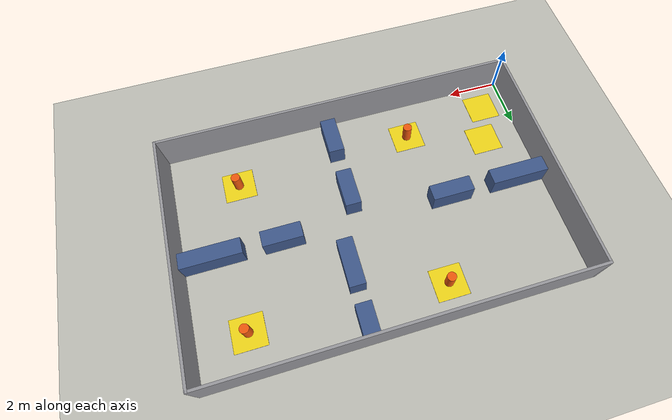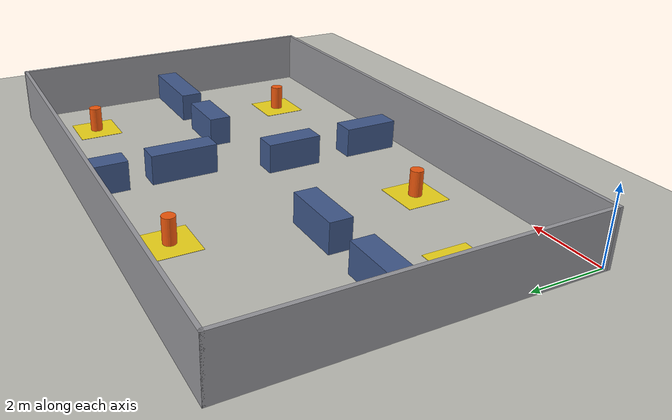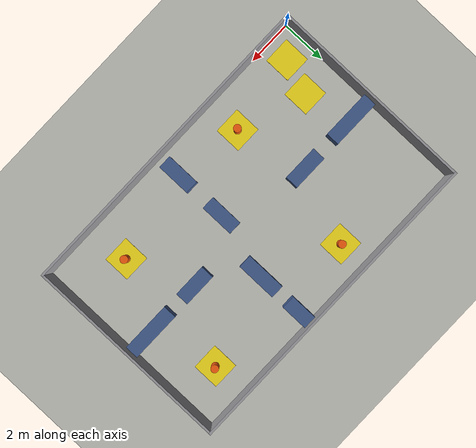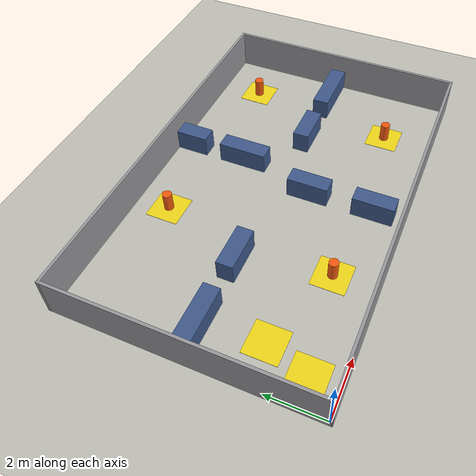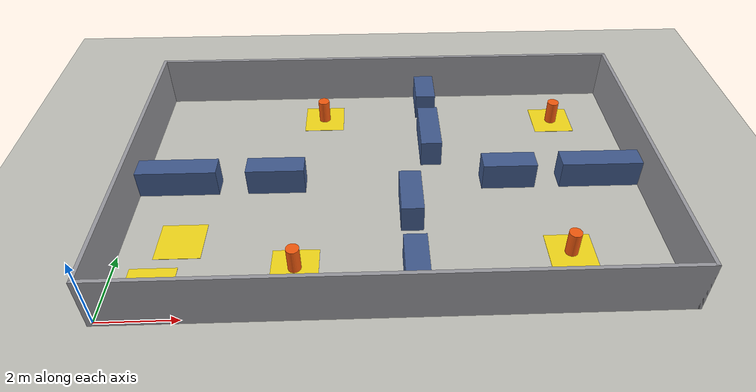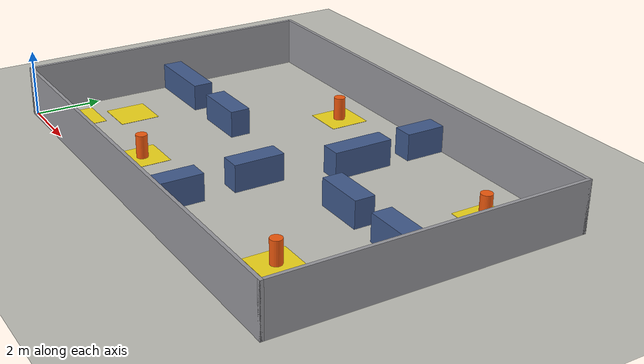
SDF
<?xml version="1.0"?>
<sdf version="1.9">
  <world name="arena_galpao">

    <physics name="1ms" type="ignored">
      <max_step_size>0.001</max_step_size>
      <real_time_factor>1.0</real_time_factor>
    </physics>

    <plugin filename="gz-sim-physics-system"
            name="gz::sim::systems::Physics"/>
    <plugin filename="gz-sim-user-commands-system"
            name="gz::sim::systems::UserCommands"/>
    <plugin filename="gz-sim-scene-broadcaster-system"
            name="gz::sim::systems::SceneBroadcaster"/>
    <plugin filename="gz-sim-imu-system"
            name="gz::sim::systems::Imu"></plugin>
    <plugin filename="gz-sim-sensors-system"
            name="gz::sim::systems::Sensors">
      <render_engine>ogre2</render_engine>
    </plugin>

    <light type="directional" name="sun">
      <cast_shadows>true</cast_shadows>
      <pose>0 0 10 0 0 0</pose>
      <diffuse>0.8 0.8 0.8 1</diffuse>
      <specular>0.2 0.2 0.2 1</specular>
      <direction>-0.5 0.1 -0.9</direction>
    </light>

    <model name="ground_plane">
      <static>true</static>
      <link name="link">
        <collision name="collision">
          <geometry><plane><normal>0 0 1</normal><size>100 100</size></plane></geometry>
        </collision>
        <visual name="visual">
          <geometry><plane><normal>0 0 1</normal><size>100 100</size></plane></geometry>
          <material>
            <ambient>0.75 0.75 0.72 1</ambient>
            <diffuse>0.75 0.75 0.72 1</diffuse>
          </material>
        </visual>
      </link>
    </model>

    <model name="muro_sul">
      <static>true</static><pose>7.0000 -0.0500 0.7500 0 0 0</pose>
      <link name="link">
        <collision name="col"><geometry><box><size>14.2000 0.1000 1.5000</size></box></geometry></collision>
        <visual name="vis"><geometry><box><size>14.2000 0.1000 1.5000</size></box></geometry>
          <material><ambient>0.6 0.6 0.62 1</ambient><diffuse>0.6 0.6 0.62 1</diffuse></material>
        </visual>
      </link>
    </model>
    <model name="muro_norte">
      <static>true</static><pose>7.0000 9.0500 0.7500 0 0 0</pose>
      <link name="link">
        <collision name="col"><geometry><box><size>14.2000 0.1000 1.5000</size></box></geometry></collision>
        <visual name="vis"><geometry><box><size>14.2000 0.1000 1.5000</size></box></geometry>
          <material><ambient>0.6 0.6 0.62 1</ambient><diffuse>0.6 0.6 0.62 1</diffuse></material>
        </visual>
      </link>
    </model>
    <model name="muro_oeste">
      <static>true</static><pose>-0.0500 4.5000 0.7500 0 0 0</pose>
      <link name="link">
        <collision name="col"><geometry><box><size>0.1000 9.2000 1.5000</size></box></geometry></collision>
        <visual name="vis"><geometry><box><size>0.1000 9.2000 1.5000</size></box></geometry>
          <material><ambient>0.6 0.6 0.62 1</ambient><diffuse>0.6 0.6 0.62 1</diffuse></material>
        </visual>
      </link>
    </model>
    <model name="muro_leste">
      <static>true</static><pose>14.0500 4.5000 0.7500 0 0 0</pose>
      <link name="link">
        <collision name="col"><geometry><box><size>0.1000 9.2000 1.5000</size></box></geometry></collision>
        <visual name="vis"><geometry><box><size>0.1000 9.2000 1.5000</size></box></geometry>
          <material><ambient>0.6 0.6 0.62 1</ambient><diffuse>0.6 0.6 0.62 1</diffuse></material>
        </visual>
      </link>
    </model>
    <model name="A_fresta90_1">
      <static>true</static><pose>7.5000 1.0500 0.4000 0 0 0</pose>
      <link name="link">
        <collision name="col"><geometry><box><size>0.6000 1.5000 0.8000</size></box></geometry></collision>
        <visual name="vis"><geometry><box><size>0.6000 1.5000 0.8000</size></box></geometry>
          <material><ambient>0.25 0.35 0.55 1</ambient><diffuse>0.25 0.35 0.55 1</diffuse></material>
        </visual>
      </link>
    </model>
    <model name="A_fresta90_2">
      <static>true</static><pose>7.5000 3.4500 0.4000 0 0 0</pose>
      <link name="link">
        <collision name="col"><geometry><box><size>0.6000 1.5000 0.8000</size></box></geometry></collision>
        <visual name="vis"><geometry><box><size>0.6000 1.5000 0.8000</size></box></geometry>
          <material><ambient>0.25 0.35 0.55 1</ambient><diffuse>0.25 0.35 0.55 1</diffuse></material>
        </visual>
      </link>
    </model>
    <model name="B_fresta70_1">
      <static>true</static><pose>10.3000 4.6000 0.4000 0 0 0</pose>
      <link name="link">
        <collision name="col"><geometry><box><size>1.5000 0.6000 0.8000</size></box></geometry></collision>
        <visual name="vis"><geometry><box><size>1.5000 0.6000 0.8000</size></box></geometry>
          <material><ambient>0.25 0.35 0.55 1</ambient><diffuse>0.25 0.35 0.55 1</diffuse></material>
        </visual>
      </link>
    </model>
    <model name="B_fresta70_2">
      <static>true</static><pose>12.8750 4.6000 0.4000 0 0 0</pose>
      <link name="link">
        <collision name="col"><geometry><box><size>2.2500 0.6000 0.8000</size></box></geometry></collision>
        <visual name="vis"><geometry><box><size>2.2500 0.6000 0.8000</size></box></geometry>
          <material><ambient>0.25 0.35 0.55 1</ambient><diffuse>0.25 0.35 0.55 1</diffuse></material>
        </visual>
      </link>
    </model>
    <model name="C_fresta60_1">
      <static>true</static><pose>8.2000 6.3000 0.4000 0 0 0</pose>
      <link name="link">
        <collision name="col"><geometry><box><size>0.6000 1.8000 0.8000</size></box></geometry></collision>
        <visual name="vis"><geometry><box><size>0.6000 1.8000 0.8000</size></box></geometry>
          <material><ambient>0.25 0.35 0.55 1</ambient><diffuse>0.25 0.35 0.55 1</diffuse></material>
        </visual>
      </link>
    </model>
    <model name="C_fresta60_2">
      <static>true</static><pose>8.2000 8.4000 0.4000 0 0 0</pose>
      <link name="link">
        <collision name="col"><geometry><box><size>0.6000 1.2000 0.8000</size></box></geometry></collision>
        <visual name="vis"><geometry><box><size>0.6000 1.2000 0.8000</size></box></geometry>
          <material><ambient>0.25 0.35 0.55 1</ambient><diffuse>0.25 0.35 0.55 1</diffuse></material>
        </visual>
      </link>
    </model>
    <model name="D_fresta80_1">
      <static>true</static><pose>1.1000 4.6000 0.4000 0 0 0</pose>
      <link name="link">
        <collision name="col"><geometry><box><size>2.2000 0.6000 0.8000</size></box></geometry></collision>
        <visual name="vis"><geometry><box><size>2.2000 0.6000 0.8000</size></box></geometry>
          <material><ambient>0.25 0.35 0.55 1</ambient><diffuse>0.25 0.35 0.55 1</diffuse></material>
        </visual>
      </link>
    </model>
    <model name="D_fresta80_2">
      <static>true</static><pose>3.8000 4.6000 0.4000 0 0 0</pose>
      <link name="link">
        <collision name="col"><geometry><box><size>1.6000 0.6000 0.8000</size></box></geometry></collision>
        <visual name="vis"><geometry><box><size>1.6000 0.6000 0.8000</size></box></geometry>
          <material><ambient>0.25 0.35 0.55 1</ambient><diffuse>0.25 0.35 0.55 1</diffuse></material>
        </visual>
      </link>
    </model>
    <model name="plat_largada">
      <static>true</static><pose>1.0000 1.0000 0.005 0 0 0</pose>
      <link name="link">
        <visual name="vis"><geometry><box><size>1.2 1.2 0.01</size></box></geometry>
          <material><ambient>0.95 0.85 0.1 1</ambient><diffuse>0.95 0.85 0.1 1</diffuse></material>
        </visual>
      </link>
    </model>
    <model name="plat_cone_1">
      <static>true</static><pose>4.5000 1.5000 0.005 0 0 0</pose>
      <link name="link">
        <visual name="vis"><geometry><box><size>1.2 1.2 0.01</size></box></geometry>
          <material><ambient>0.95 0.85 0.1 1</ambient><diffuse>0.95 0.85 0.1 1</diffuse></material>
        </visual>
      </link>
    </model>
    <model name="cone_1">
      <static>true</static><pose>4.5000 1.5000 0.3500 0 0 0</pose>
      <link name="link">
        <collision name="col"><geometry><cylinder><radius>0.17</radius><length>0.7</length></cylinder></geometry></collision>
        <visual name="vis"><geometry><cylinder><radius>0.17</radius><length>0.7</length></cylinder></geometry>
          <material><ambient>0.95 0.35 0.05 1</ambient><diffuse>0.95 0.35 0.05 1</diffuse></material>
        </visual>
      </link>
    </model>
    <model name="plat_cone_2">
      <static>true</static><pose>11.5000 1.8000 0.005 0 0 0</pose>
      <link name="link">
        <visual name="vis"><geometry><box><size>1.2 1.2 0.01</size></box></geometry>
          <material><ambient>0.95 0.85 0.1 1</ambient><diffuse>0.95 0.85 0.1 1</diffuse></material>
        </visual>
      </link>
    </model>
    <model name="cone_2">
      <static>true</static><pose>11.5000 1.8000 0.3500 0 0 0</pose>
      <link name="link">
        <collision name="col"><geometry><cylinder><radius>0.17</radius><length>0.7</length></cylinder></geometry></collision>
        <visual name="vis"><geometry><cylinder><radius>0.17</radius><length>0.7</length></cylinder></geometry>
          <material><ambient>0.95 0.35 0.05 1</ambient><diffuse>0.95 0.35 0.05 1</diffuse></material>
        </visual>
      </link>
    </model>
    <model name="plat_cone_3">
      <static>true</static><pose>12.2000 7.5000 0.005 0 0 0</pose>
      <link name="link">
        <visual name="vis"><geometry><box><size>1.2 1.2 0.01</size></box></geometry>
          <material><ambient>0.95 0.85 0.1 1</ambient><diffuse>0.95 0.85 0.1 1</diffuse></material>
        </visual>
      </link>
    </model>
    <model name="cone_3">
      <static>true</static><pose>12.2000 7.5000 0.3500 0 0 0</pose>
      <link name="link">
        <collision name="col"><geometry><cylinder><radius>0.17</radius><length>0.7</length></cylinder></geometry></collision>
        <visual name="vis"><geometry><cylinder><radius>0.17</radius><length>0.7</length></cylinder></geometry>
          <material><ambient>0.95 0.35 0.05 1</ambient><diffuse>0.95 0.35 0.05 1</diffuse></material>
        </visual>
      </link>
    </model>
    <model name="plat_cone_4">
      <static>true</static><pose>5.0000 7.8000 0.005 0 0 0</pose>
      <link name="link">
        <visual name="vis"><geometry><box><size>1.2 1.2 0.01</size></box></geometry>
          <material><ambient>0.95 0.85 0.1 1</ambient><diffuse>0.95 0.85 0.1 1</diffuse></material>
        </visual>
      </link>
    </model>
    <model name="cone_4">
      <static>true</static><pose>5.0000 7.8000 0.3500 0 0 0</pose>
      <link name="link">
        <collision name="col"><geometry><cylinder><radius>0.17</radius><length>0.7</length></cylinder></geometry></collision>
        <visual name="vis"><geometry><cylinder><radius>0.17</radius><length>0.7</length></cylinder></geometry>
          <material><ambient>0.95 0.35 0.05 1</ambient><diffuse>0.95 0.35 0.05 1</diffuse></material>
        </visual>
      </link>
    </model>
    <model name="plat_chegada">
      <static>true</static><pose>1.5000 2.5000 0.005 0 0 0</pose>
      <link name="link">
        <visual name="vis"><geometry><box><size>1.2 1.2 0.01</size></box></geometry>
          <material><ambient>0.95 0.85 0.1 1</ambient><diffuse>0.95 0.85 0.1 1</diffuse></material>
        </visual>
      </link>
    </model>
  </world>
</sdf>
